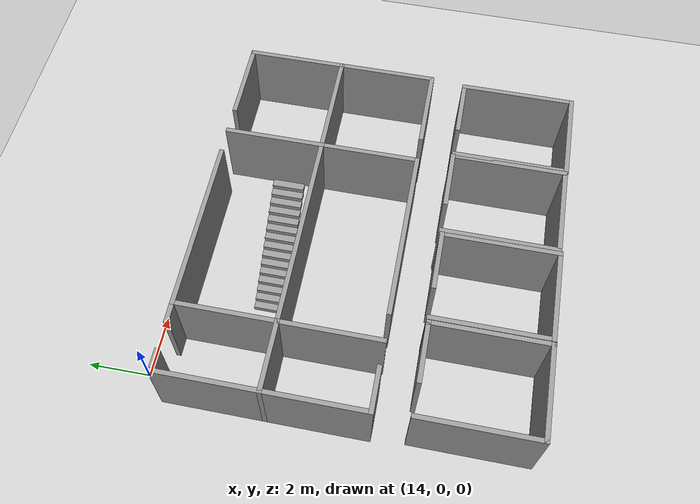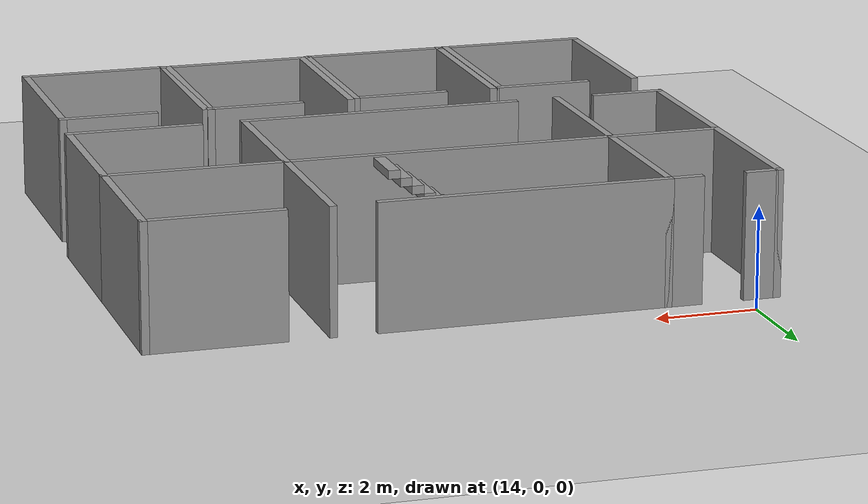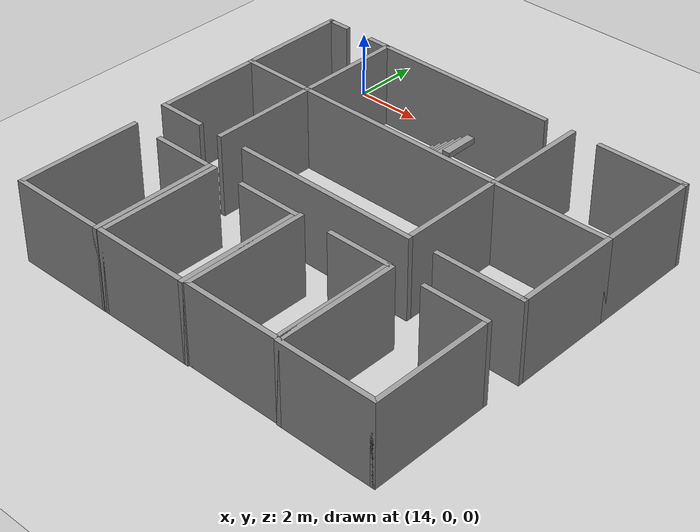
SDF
<sdf version="1.6">
 <world name="default">
  <model name="ground_plane">
   <static>1</static>
   <link name="link">
    <collision name="collision">
     <geometry><plane><normal>0 0 1</normal><size>100 100</size></plane></geometry>
     <surface><friction><ode><mu>100</mu><mu2>50</mu2></ode></friction></surface>
    </collision>
    <visual name="visual">
     <cast_shadows>0</cast_shadows>
     <geometry><plane><normal>0 0 1</normal><size>100 100</size></plane></geometry>
     <material>
      <script><uri>file://media/materials/scripts/gazebo.material</uri><name>Gazebo/Grey</name></script>
     </material>
    </visual>
   </link>
  </model>
  <model name="438">
   <pose>19.4503 -3.87197 0 0 -0 0</pose>
   <link name="Wall_105">
    <collision name="Wall_105_Collision">
     <geometry><box><size>6.668 0.15 2.5</size></box></geometry>
     <pose>0 0 1.25 0 -0 0</pose>
    </collision>
    <visual name="Wall_105_Visual">
     <pose>0 0 1.25 0 -0 0</pose>
     <geometry><box><size>6.668 0.15 2.5</size></box></geometry>
     <material>
      <script><uri>file://media/materials/scripts/gazebo.material</uri><name>Gazebo/Grey</name></script>
      <ambient>1 1 1 1</ambient>
     </material>
     <meta><layer>0</layer></meta>
    </visual>
    <pose>-0.6665 0 0 0 -0 0</pose>
   </link>
   <link name="Wall_106">
    <collision name="Wall_106_Collision">
     <geometry><box><size>3.338 0.15 2.5</size></box></geometry>
     <pose>0 0 1.25 0 -0 0</pose>
    </collision>
    <visual name="Wall_106_Visual">
     <pose>0 0 1.25 0 -0 0</pose>
     <geometry><box><size>3.338 0.15 2.5</size></box></geometry>
     <material>
      <script><uri>file://media/materials/scripts/gazebo.material</uri><name>Gazebo/Grey</name></script>
      <ambient>1 1 1 1</ambient>
     </material>
     <meta><layer>0</layer></meta>
    </visual>
    <pose>2.5925 -1.594 0 0 -0 -1.5708</pose>
   </link>
   <link name="Wall_108">
    <collision name="Wall_108_Collision">
     <geometry><box><size>3.338 0.15 2.5</size></box></geometry>
     <pose>0 0 1.25 0 -0 0</pose>
    </collision>
    <visual name="Wall_108_Visual">
     <pose>0 0 1.25 0 -0 0</pose>
     <geometry><box><size>3.338 0.15 2.5</size></box></geometry>
     <material>
      <script><uri>file://media/materials/scripts/gazebo.material</uri><name>Gazebo/Grey</name></script>
      <ambient>1 1 1 1</ambient>
     </material>
     <meta><layer>0</layer></meta>
    </visual>
    <pose>-3.9255 -1.594 0 0 -0 1.5708</pose>
   </link>
   <link name="Wall_110">
    <collision name="Wall_110_Collision">
     <geometry><box><size>3.667 0.15 2.5</size></box></geometry>
     <pose>0 0 1.25 0 -0 0</pose>
    </collision>
    <visual name="Wall_110_Visual">
     <pose>0 0 1.25 0 -0 0</pose>
     <geometry><box><size>3.667 0.15 2.5</size></box></geometry>
     <material>
      <script><uri>file://media/materials/scripts/gazebo.material</uri><name>Gazebo/Grey</name></script>
      <ambient>1 1 1 1</ambient>
     </material>
     <meta><layer>0</layer></meta>
    </visual>
    <pose>4.351 0 0 0 -0 0</pose>
   </link>
   <link name="Wall_111">
    <collision name="Wall_111_Collision">
     <geometry><box><size>3.338 0.15 2.5</size></box></geometry>
     <pose>0 0 1.25 0 -0 0</pose>
    </collision>
    <visual name="Wall_111_Visual">
     <pose>0 0 1.25 0 -0 0</pose>
     <geometry><box><size>3.338 0.15 2.5</size></box></geometry>
     <material>
      <script><uri>file://media/materials/scripts/gazebo.material</uri><name>Gazebo/Grey</name></script>
      <ambient>1 1 1 1</ambient>
     </material>
     <meta><layer>0</layer></meta>
    </visual>
    <pose>6.1095 1.594 0 0 -0 1.5708</pose>
   </link>
   <link name="Wall_113">
    <collision name="Wall_113_Collision">
     <geometry><box><size>3.338 0.15 2.5</size></box></geometry>
     <pose>0 0 1.25 0 -0 0</pose>
    </collision>
    <visual name="Wall_113_Visual">
     <pose>0 0 1.25 0 -0 0</pose>
     <geometry><box><size>3.338 0.15 2.5</size></box></geometry>
     <material>
      <script><uri>file://media/materials/scripts/gazebo.material</uri><name>Gazebo/Grey</name></script>
      <ambient>1 1 1 1</ambient>
     </material>
     <meta><layer>0</layer></meta>
    </visual>
    <pose>2.5925 1.594 0 0 -0 -1.5708</pose>
   </link>
   <link name="Wall_115">
    <collision name="Wall_115_Collision">
     <geometry><box><size>3.338 0.15 2.5</size></box></geometry>
     <pose>0 0 1.25 0 -0 0</pose>
    </collision>
    <visual name="Wall_115_Visual">
     <pose>0 0 1.25 0 -0 0</pose>
     <geometry><box><size>3.338 0.15 2.5</size></box></geometry>
     <material>
      <script><uri>file://media/materials/scripts/gazebo.material</uri><name>Gazebo/Grey</name></script>
      <ambient>1 1 1 1</ambient>
     </material>
     <meta><layer>0</layer></meta>
    </visual>
    <pose>6.1095 -1.594 0 0 -0 -1.5708</pose>
   </link>
   <link name="Wall_118">
    <collision name="Wall_118_Collision">
     <geometry><box><size>2.75 0.15 2.5</size></box></geometry>
     <pose>0 0 1.25 0 -0 0</pose>
    </collision>
    <visual name="Wall_118_Visual">
     <pose>0 0 1.25 0 -0 0</pose>
     <geometry><box><size>2.75 0.15 2.5</size></box></geometry>
     <material>
      <script><uri>file://media/materials/scripts/gazebo.material</uri><name>Gazebo/Grey</name></script>
      <ambient>1 1 1 1</ambient>
     </material>
     <meta><layer>0</layer></meta>
    </visual>
    <pose>4.8095 3.188 0 0 -0 3.14159</pose>
   </link>
   <link name="Wall_120">
    <collision name="Wall_120_Collision">
     <geometry><box><size>2.75 0.15 2.5</size></box></geometry>
     <pose>0 0 1.25 0 -0 0</pose>
    </collision>
    <visual name="Wall_120_Visual">
     <pose>0 0 1.25 0 -0 0</pose>
     <geometry><box><size>2.75 0.15 2.5</size></box></geometry>
     <material>
      <script><uri>file://media/materials/scripts/gazebo.material</uri><name>Gazebo/Grey</name></script>
      <ambient>1 1 1 1</ambient>
     </material>
     <meta><layer>0</layer></meta>
    </visual>
    <pose>4.8095 -3.188 0 0 -0 3.14159</pose>
   </link>
   <link name="Wall_122">
    <collision name="Wall_122_Collision">
     <geometry><box><size>5.75 0.15 2.5</size></box></geometry>
     <pose>0 0 1.25 0 -0 0</pose>
    </collision>
    <visual name="Wall_122_Visual">
     <pose>0 0 1.25 0 -0 0</pose>
     <geometry><box><size>5.75 0.15 2.5</size></box></geometry>
     <material>
      <script><uri>file://media/materials/scripts/gazebo.material</uri><name>Gazebo/Grey</name></script>
      <ambient>1 1 1 1</ambient>
     </material>
     <meta><layer>0</layer></meta>
    </visual>
    <pose>-0.2075 -3.188 0 0 -0 3.14159</pose>
   </link>
   <link name="Wall_124">
    <collision name="Wall_124_Collision">
     <geometry><box><size>2.334 0.15 2.5</size></box></geometry>
     <pose>0 0 1.25 0 -0 0</pose>
    </collision>
    <visual name="Wall_124_Visual">
     <pose>0 0 1.25 0 -0 0</pose>
     <geometry><box><size>2.334 0.15 2.5</size></box></geometry>
     <material>
      <script><uri>file://media/materials/scripts/gazebo.material</uri><name>Gazebo/Grey</name></script>
      <ambient>1 1 1 1</ambient>
     </material>
     <meta><layer>0</layer></meta>
    </visual>
    <pose>-5.0175 0 0 0 -0 3.14159</pose>
   </link>
   <link name="Wall_125">
    <collision name="Wall_125_Collision">
     <geometry><box><size>3.338 0.15 2.5</size></box></geometry>
     <pose>0 0 1.25 0 -0 0</pose>
    </collision>
    <visual name="Wall_125_Visual">
     <pose>0 0 1.25 0 -0 0</pose>
     <geometry><box><size>3.338 0.15 2.5</size></box></geometry>
     <material>
      <script><uri>file://media/materials/scripts/gazebo.material</uri><name>Gazebo/Grey</name></script>
      <ambient>1 1 1 1</ambient>
     </material>
     <meta><layer>0</layer></meta>
    </visual>
    <pose>-6.1095 1.594 0 0 -0 1.5708</pose>
   </link>
   <link name="Wall_127">
    <collision name="Wall_127_Collision">
     <geometry><box><size>3.338 0.15 2.5</size></box></geometry>
     <pose>0 0 1.25 0 -0 0</pose>
    </collision>
    <visual name="Wall_127_Visual">
     <pose>0 0 1.25 0 -0 0</pose>
     <geometry><box><size>3.338 0.15 2.5</size></box></geometry>
     <material>
      <script><uri>file://media/materials/scripts/gazebo.material</uri><name>Gazebo/Grey</name></script>
      <ambient>1 1 1 1</ambient>
     </material>
     <meta><layer>0</layer></meta>
    </visual>
    <pose>-3.9255 1.594 0 0 -0 -1.5708</pose>
   </link>
   <link name="Wall_129">
    <collision name="Wall_129_Collision">
     <geometry><box><size>3.338 0.15 2.5</size></box></geometry>
     <pose>0 0 1.25 0 -0 0</pose>
    </collision>
    <visual name="Wall_129_Visual">
     <pose>0 0 1.25 0 -0 0</pose>
     <geometry><box><size>3.338 0.15 2.5</size></box></geometry>
     <material>
      <script><uri>file://media/materials/scripts/gazebo.material</uri><name>Gazebo/Grey</name></script>
      <ambient>1 1 1 1</ambient>
     </material>
     <meta><layer>0</layer></meta>
    </visual>
    <pose>-6.1095 -1.594 0 0 -0 -1.5708</pose>
   </link>
   <link name="Wall_132">
    <collision name="Wall_132_Collision">
     <geometry><box><size>1.5 0.15 2.5</size></box></geometry>
     <pose>0 0 1.25 0 -0 0</pose>
    </collision>
    <visual name="Wall_132_Visual">
     <pose>0 0 1.25 0 -0 0</pose>
     <geometry><box><size>1.5 0.15 2.5</size></box></geometry>
     <material>
      <script><uri>file://media/materials/scripts/gazebo.material</uri><name>Gazebo/Grey</name></script>
      <ambient>1 1 1 1</ambient>
     </material>
     <meta><layer>0</layer></meta>
    </visual>
    <pose>-5.4345 -3.188 0 0 -0 0</pose>
   </link>
   <link name="Wall_134">
    <collision name="Wall_134_Collision">
     <geometry><box><size>0.75 0.15 2.5</size></box></geometry>
     <pose>0 0 1.25 0 -0 0</pose>
    </collision>
    <visual name="Wall_134_Visual">
     <pose>0 0 1.25 0 -0 0</pose>
     <geometry><box><size>0.75 0.15 2.5</size></box></geometry>
     <material>
      <script><uri>file://media/materials/scripts/gazebo.material</uri><name>Gazebo/Grey</name></script>
      <ambient>1 1 1 1</ambient>
     </material>
     <meta><layer>0</layer></meta>
    </visual>
    <pose>-5.8095 3.188 0 0 -0 0</pose>
   </link>
   <link name="Wall_136">
    <collision name="Wall_136_Collision">
     <geometry><box><size>0.75 0.15 2.5</size></box></geometry>
     <pose>0 0 1.25 0 -0 0</pose>
    </collision>
    <visual name="Wall_136_Visual">
     <pose>0 0 1.25 0 -0 0</pose>
     <geometry><box><size>0.75 0.15 2.5</size></box></geometry>
     <material>
      <script><uri>file://media/materials/scripts/gazebo.material</uri><name>Gazebo/Grey</name></script>
      <ambient>1 1 1 1</ambient>
     </material>
     <meta><layer>0</layer></meta>
    </visual>
    <pose>-4.2255 3.188 0 0 -0 0</pose>
   </link>
   <link name="Wall_138">
    <collision name="Wall_138_Collision">
     <geometry><box><size>5.75 0.15 2.5</size></box></geometry>
     <pose>0 0 1.25 0 -0 0</pose>
    </collision>
    <visual name="Wall_138_Visual">
     <pose>0 0 1.25 0 -0 0</pose>
     <geometry><box><size>5.75 0.15 2.5</size></box></geometry>
     <material>
      <script><uri>file://media/materials/scripts/gazebo.material</uri><name>Gazebo/Grey</name></script>
      <ambient>1 1 1 1</ambient>
     </material>
     <meta><layer>0</layer></meta>
    </visual>
    <pose>-1.1255 3.188 0 0 -0 0</pose>
   </link>
   <static>1</static>
  </model>
  <model name="329">
   <pose>23.9902 -10.0463 0 0 -0 0</pose>
   <link name="Wall_0">
    <collision name="Wall_0_Collision">
     <geometry><box><size>3.81 0.15 2.5</size></box></geometry>
     <pose>0 0 1.25 0 -0 0</pose>
    </collision>
    <visual name="Wall_0_Visual">
     <pose>0 0 1.25 0 -0 0</pose>
     <geometry><box><size>3.81 0.15 2.5</size></box></geometry>
     <material>
      <script><uri>file://media/materials/scripts/gazebo.material</uri><name>Gazebo/Grey</name></script>
      <ambient>1 1 1 1</ambient>
     </material>
     <meta><layer>0</layer></meta>
    </visual>
    <pose>-1.449 0 0 0 -0 -1.5708</pose>
   </link>
   <link name="Wall_1">
    <collision name="Wall_1_Collision">
     <geometry><box><size>3.048 0.15 2.5</size></box></geometry>
     <pose>0 0 1.25 0 -0 0</pose>
    </collision>
    <visual name="Wall_1_Visual">
     <pose>0 0 1.25 0 -0 0</pose>
     <geometry><box><size>3.048 0.15 2.5</size></box></geometry>
     <material>
      <script><uri>file://media/materials/scripts/gazebo.material</uri><name>Gazebo/Grey</name></script>
      <ambient>1 1 1 1</ambient>
     </material>
     <meta><layer>0</layer></meta>
    </visual>
    <pose>-0 -1.83 0 0 -0 0</pose>
   </link>
   <link name="Wall_2">
    <collision name="Wall_2_Collision">
     <geometry><box><size>3.81 0.15 2.5</size></box></geometry>
     <pose>0 0 1.25 0 -0 0</pose>
    </collision>
    <visual name="Wall_2_Visual">
     <pose>0 0 1.25 0 -0 0</pose>
     <geometry><box><size>3.81 0.15 2.5</size></box></geometry>
     <material>
      <script><uri>file://media/materials/scripts/gazebo.material</uri><name>Gazebo/Grey</name></script>
      <ambient>1 1 1 1</ambient>
     </material>
     <meta><layer>0</layer></meta>
    </visual>
    <pose>1.449 0 0 0 -0 1.5708</pose>
   </link>
   <link name="Wall_5">
    <collision name="Wall_5_Collision">
     <geometry><box><size>2 0.15 2.5</size></box></geometry>
     <pose>0 0 1.25 0 -0 0</pose>
    </collision>
    <visual name="Wall_5_Visual">
     <pose>0 0 1.25 0 -0 0</pose>
     <geometry><box><size>2 0.15 2.5</size></box></geometry>
     <material>
      <script><uri>file://media/materials/scripts/gazebo.material</uri><name>Gazebo/Grey</name></script>
      <ambient>1 1 1 1</ambient>
     </material>
     <meta><layer>0</layer></meta>
    </visual>
    <pose>0.524 1.83 0 0 -0 3.14159</pose>
   </link>
   <static>1</static>
  </model>
  <model name="329_0">
   <pose>20.9915 -10.021 0 0 -0 0</pose>
   <link name="Wall_0">
    <collision name="Wall_0_Collision">
     <geometry><box><size>3.81 0.15 2.5</size></box></geometry>
     <pose>0 0 1.25 0 -0 0</pose>
    </collision>
    <visual name="Wall_0_Visual">
     <pose>0 0 1.25 0 -0 0</pose>
     <geometry><box><size>3.81 0.15 2.5</size></box></geometry>
     <material>
      <script><uri>file://media/materials/scripts/gazebo.material</uri><name>Gazebo/Grey</name></script>
      <ambient>1 1 1 1</ambient>
     </material>
     <meta><layer>0</layer></meta>
    </visual>
    <pose>-1.449 0 0 0 -0 -1.5708</pose>
   </link>
   <link name="Wall_1">
    <collision name="Wall_1_Collision">
     <geometry><box><size>3.048 0.15 2.5</size></box></geometry>
     <pose>0 0 1.25 0 -0 0</pose>
    </collision>
    <visual name="Wall_1_Visual">
     <pose>0 0 1.25 0 -0 0</pose>
     <geometry><box><size>3.048 0.15 2.5</size></box></geometry>
     <material>
      <script><uri>file://media/materials/scripts/gazebo.material</uri><name>Gazebo/Grey</name></script>
      <ambient>1 1 1 1</ambient>
     </material>
     <meta><layer>0</layer></meta>
    </visual>
    <pose>-0 -1.83 0 0 -0 0</pose>
   </link>
   <link name="Wall_2">
    <collision name="Wall_2_Collision">
     <geometry><box><size>3.81 0.15 2.5</size></box></geometry>
     <pose>0 0 1.25 0 -0 0</pose>
    </collision>
    <visual name="Wall_2_Visual">
     <pose>0 0 1.25 0 -0 0</pose>
     <geometry><box><size>3.81 0.15 2.5</size></box></geometry>
     <material>
      <script><uri>file://media/materials/scripts/gazebo.material</uri><name>Gazebo/Grey</name></script>
      <ambient>1 1 1 1</ambient>
     </material>
     <meta><layer>0</layer></meta>
    </visual>
    <pose>1.449 0 0 0 -0 1.5708</pose>
   </link>
   <link name="Wall_5">
    <collision name="Wall_5_Collision">
     <geometry><box><size>2 0.15 2.5</size></box></geometry>
     <pose>0 0 1.25 0 -0 0</pose>
    </collision>
    <visual name="Wall_5_Visual">
     <pose>0 0 1.25 0 -0 0</pose>
     <geometry><box><size>2 0.15 2.5</size></box></geometry>
     <material>
      <script><uri>file://media/materials/scripts/gazebo.material</uri><name>Gazebo/Grey</name></script>
      <ambient>1 1 1 1</ambient>
     </material>
     <meta><layer>0</layer></meta>
    </visual>
    <pose>0.524 1.83 0 0 -0 3.14159</pose>
   </link>
   <static>1</static>
  </model>
  <model name="329_1">
   <pose>17.961 -10.0607 0 0 -0 0</pose>
   <link name="Wall_0">
    <collision name="Wall_0_Collision">
     <geometry><box><size>3.81 0.15 2.5</size></box></geometry>
     <pose>0 0 1.25 0 -0 0</pose>
    </collision>
    <visual name="Wall_0_Visual">
     <pose>0 0 1.25 0 -0 0</pose>
     <geometry><box><size>3.81 0.15 2.5</size></box></geometry>
     <material>
      <script><uri>file://media/materials/scripts/gazebo.material</uri><name>Gazebo/Grey</name></script>
      <ambient>1 1 1 1</ambient>
     </material>
     <meta><layer>0</layer></meta>
    </visual>
    <pose>-1.449 0 0 0 -0 -1.5708</pose>
   </link>
   <link name="Wall_1">
    <collision name="Wall_1_Collision">
     <geometry><box><size>3.048 0.15 2.5</size></box></geometry>
     <pose>0 0 1.25 0 -0 0</pose>
    </collision>
    <visual name="Wall_1_Visual">
     <pose>0 0 1.25 0 -0 0</pose>
     <geometry><box><size>3.048 0.15 2.5</size></box></geometry>
     <material>
      <script><uri>file://media/materials/scripts/gazebo.material</uri><name>Gazebo/Grey</name></script>
      <ambient>1 1 1 1</ambient>
     </material>
     <meta><layer>0</layer></meta>
    </visual>
    <pose>-0 -1.83 0 0 -0 0</pose>
   </link>
   <link name="Wall_2">
    <collision name="Wall_2_Collision">
     <geometry><box><size>3.81 0.15 2.5</size></box></geometry>
     <pose>0 0 1.25 0 -0 0</pose>
    </collision>
    <visual name="Wall_2_Visual">
     <pose>0 0 1.25 0 -0 0</pose>
     <geometry><box><size>3.81 0.15 2.5</size></box></geometry>
     <material>
      <script><uri>file://media/materials/scripts/gazebo.material</uri><name>Gazebo/Grey</name></script>
      <ambient>1 1 1 1</ambient>
     </material>
     <meta><layer>0</layer></meta>
    </visual>
    <pose>1.449 0 0 0 -0 1.5708</pose>
   </link>
   <link name="Wall_5">
    <collision name="Wall_5_Collision">
     <geometry><box><size>2 0.15 2.5</size></box></geometry>
     <pose>0 0 1.25 0 -0 0</pose>
    </collision>
    <visual name="Wall_5_Visual">
     <pose>0 0 1.25 0 -0 0</pose>
     <geometry><box><size>2 0.15 2.5</size></box></geometry>
     <material>
      <script><uri>file://media/materials/scripts/gazebo.material</uri><name>Gazebo/Grey</name></script>
      <ambient>1 1 1 1</ambient>
     </material>
     <meta><layer>0</layer></meta>
    </visual>
    <pose>0.524 1.83 0 0 -0 3.14159</pose>
   </link>
   <static>1</static>
  </model>
  <model name="329_2">
   <pose>14.9043 -10.067 0 0 -0 0</pose>
   <link name="Wall_0">
    <collision name="Wall_0_Collision">
     <geometry><box><size>3.81 0.15 2.5</size></box></geometry>
     <pose>0 0 1.25 0 -0 0</pose>
    </collision>
    <visual name="Wall_0_Visual">
     <pose>0 0 1.25 0 -0 0</pose>
     <geometry><box><size>3.81 0.15 2.5</size></box></geometry>
     <material>
      <script><uri>file://media/materials/scripts/gazebo.material</uri><name>Gazebo/Grey</name></script>
      <ambient>1 1 1 1</ambient>
     </material>
     <meta><layer>0</layer></meta>
    </visual>
    <pose>-1.449 0 0 0 -0 -1.5708</pose>
   </link>
   <link name="Wall_1">
    <collision name="Wall_1_Collision">
     <geometry><box><size>3.048 0.15 2.5</size></box></geometry>
     <pose>0 0 1.25 0 -0 0</pose>
    </collision>
    <visual name="Wall_1_Visual">
     <pose>0 0 1.25 0 -0 0</pose>
     <geometry><box><size>3.048 0.15 2.5</size></box></geometry>
     <material>
      <script><uri>file://media/materials/scripts/gazebo.material</uri><name>Gazebo/Grey</name></script>
      <ambient>1 1 1 1</ambient>
     </material>
     <meta><layer>0</layer></meta>
    </visual>
    <pose>-0 -1.83 0 0 -0 0</pose>
   </link>
   <link name="Wall_2">
    <collision name="Wall_2_Collision">
     <geometry><box><size>3.81 0.15 2.5</size></box></geometry>
     <pose>0 0 1.25 0 -0 0</pose>
    </collision>
    <visual name="Wall_2_Visual">
     <pose>0 0 1.25 0 -0 0</pose>
     <geometry><box><size>3.81 0.15 2.5</size></box></geometry>
     <material>
      <script><uri>file://media/materials/scripts/gazebo.material</uri><name>Gazebo/Grey</name></script>
      <ambient>1 1 1 1</ambient>
     </material>
     <meta><layer>0</layer></meta>
    </visual>
    <pose>1.449 0 0 0 -0 1.5708</pose>
   </link>
   <link name="Wall_5">
    <collision name="Wall_5_Collision">
     <geometry><box><size>2 0.15 2.5</size></box></geometry>
     <pose>0 0 1.25 0 -0 0</pose>
    </collision>
    <visual name="Wall_5_Visual">
     <pose>0 0 1.25 0 -0 0</pose>
     <geometry><box><size>2 0.15 2.5</size></box></geometry>
     <material>
      <script><uri>file://media/materials/scripts/gazebo.material</uri><name>Gazebo/Grey</name></script>
      <ambient>1 1 1 1</ambient>
     </material>
     <meta><layer>0</layer></meta>
    </visual>
    <pose>0.524 1.83 0 0 -0 3.14159</pose>
   </link>
   <static>1</static>
  </model>
  <model name="Staircase_1">
   <link name="Stairs_0">
    <visual name="Stairs_0_Visual_2">
     <pose>-1.16667 -0 0.416667 0 -0 1.5708</pose>
     <geometry><box><size>1 0.233333 0.166667</size></box></geometry>
     <material>
      <script><uri>file://media/materials/scripts/gazebo.material</uri><name>Gazebo/Grey</name></script>
      <ambient>1 1 1 1</ambient>
      <shader type="pixel"/>
     </material>
     <meta><layer>0</layer></meta>
    </visual>
    <visual name="Stairs_0_Visual_3">
     <pose>-0.933333 -0 0.583333 0 -0 1.5708</pose>
     <geometry><box><size>1 0.233333 0.166667</size></box></geometry>
     <material>
      <script><uri>file://media/materials/scripts/gazebo.material</uri><name>Gazebo/Grey</name></script>
      <ambient>1 1 1 1</ambient>
      <shader type="pixel"/>
     </material>
     <meta><layer>0</layer></meta>
    </visual>
    <visual name="Stairs_0_Visual_4">
     <pose>-0.7 0 0.75 0 -0 1.5708</pose>
     <geometry><box><size>1 0.233333 0.166667</size></box></geometry>
     <material>
      <script><uri>file://media/materials/scripts/gazebo.material</uri><name>Gazebo/Grey</name></script>
      <ambient>1 1 1 1</ambient>
      <shader type="pixel"/>
     </material>
     <meta><layer>0</layer></meta>
    </visual>
    <visual name="Stairs_0_Visual_5">
     <pose>-0.466667 0 0.916667 0 -0 1.5708</pose>
     <geometry><box><size>1 0.233333 0.166667</size></box></geometry>
     <material>
      <script><uri>file://media/materials/scripts/gazebo.material</uri><name>Gazebo/Grey</name></script>
      <ambient>1 1 1 1</ambient>
      <shader type="pixel"/>
     </material>
     <meta><layer>0</layer></meta>
    </visual>
    <visual name="Stairs_0_Visual_6">
     <pose>-0.233333 0 1.08333 0 -0 1.5708</pose>
     <geometry><box><size>1 0.233333 0.166667</size></box></geometry>
     <material>
      <script><uri>file://media/materials/scripts/gazebo.material</uri><name>Gazebo/Grey</name></script>
      <ambient>1 1 1 1</ambient>
      <shader type="pixel"/>
     </material>
     <meta><layer>0</layer></meta>
    </visual>
    <visual name="Stairs_0_Visual_7">
     <pose>0 0 1.25 0 -0 1.5708</pose>
     <geometry><box><size>1 0.233333 0.166667</size></box></geometry>
     <material>
      <script><uri>file://media/materials/scripts/gazebo.material</uri><name>Gazebo/Grey</name></script>
      <ambient>1 1 1 1</ambient>
      <shader type="pixel"/>
     </material>
     <meta><layer>0</layer></meta>
    </visual>
    <visual name="Stairs_0_Visual_8">
     <pose>0.233333 0 1.41667 0 -0 1.5708</pose>
     <geometry><box><size>1 0.233333 0.166667</size></box></geometry>
     <material>
      <script><uri>file://media/materials/scripts/gazebo.material</uri><name>Gazebo/Grey</name></script>
      <ambient>1 1 1 1</ambient>
      <shader type="pixel"/>
     </material>
     <meta><layer>0</layer></meta>
    </visual>
    <visual name="Stairs_0_Visual_9">
     <pose>0.466667 0 1.58333 0 -0 1.5708</pose>
     <geometry><box><size>1 0.233333 0.166667</size></box></geometry>
     <material>
      <script><uri>file://media/materials/scripts/gazebo.material</uri><name>Gazebo/Grey</name></script>
      <ambient>1 1 1 1</ambient>
      <shader type="pixel"/>
     </material>
     <meta><layer>0</layer></meta>
    </visual>
    <visual name="Stairs_0_Visual_10">
     <pose>0.7 0 1.75 0 -0 1.5708</pose>
     <geometry><box><size>1 0.233333 0.166667</size></box></geometry>
     <material>
      <script><uri>file://media/materials/scripts/gazebo.material</uri><name>Gazebo/Grey</name></script>
      <ambient>1 1 1 1</ambient>
      <shader type="pixel"/>
     </material>
     <meta><layer>0</layer></meta>
    </visual>
    <visual name="Stairs_0_Visual_11">
     <pose>0.933334 0 1.91667 0 -0 1.5708</pose>
     <geometry><box><size>1 0.233333 0.166667</size></box></geometry>
     <material>
      <script><uri>file://media/materials/scripts/gazebo.material</uri><name>Gazebo/Grey</name></script>
      <ambient>1 1 1 1</ambient>
      <shader type="pixel"/>
     </material>
     <meta><layer>0</layer></meta>
    </visual>
    <visual name="Stairs_0_Visual_12">
     <pose>1.16667 0 2.08333 0 -0 1.5708</pose>
     <geometry><box><size>1 0.233333 0.166667</size></box></geometry>
     <material>
      <script><uri>file://media/materials/scripts/gazebo.material</uri><name>Gazebo/Grey</name></script>
      <ambient>1 1 1 1</ambient>
      <shader type="pixel"/>
     </material>
     <meta><layer>0</layer></meta>
    </visual>
    <visual name="Stairs_0_Visual_13">
     <pose>1.4 0 2.25 0 -0 1.5708</pose>
     <geometry><box><size>1 0.233333 0.166667</size></box></geometry>
     <material>
      <script><uri>file://media/materials/scripts/gazebo.material</uri><name>Gazebo/Grey</name></script>
      <ambient>1 1 1 1</ambient>
      <shader type="pixel"/>
     </material>
     <meta><layer>0</layer></meta>
    </visual>
    <visual name="Stairs_0_Visual_14">
     <pose>1.63333 0 2.41667 0 -0 1.5708</pose>
     <geometry><box><size>1 0.233333 0.166667</size></box></geometry>
     <material>
      <script><uri>file://media/materials/scripts/gazebo.material</uri><name>Gazebo/Grey</name></script>
      <ambient>1 1 1 1</ambient>
      <shader type="pixel"/>
     </material>
     <meta><layer>0</layer></meta>
    </visual>
    <visual name="Stairs_0_Visual_0">
     <pose>-1.63333 -0 0.083333 0 -0 1.5708</pose>
     <geometry><box><size>1 0.233333 0.166667</size></box></geometry>
     <material>
      <script><uri>file://media/materials/scripts/gazebo.material</uri><name>Gazebo/Grey</name></script>
      <ambient>1 1 1 1</ambient>
      <shader type="pixel"/>
     </material>
     <meta><layer>0</layer></meta>
    </visual>
    <visual name="Stairs_0_Visual_1">
     <pose>-1.4 -0 0.25 0 -0 1.5708</pose>
     <geometry><box><size>1 0.233333 0.166667</size></box></geometry>
     <material>
      <script><uri>file://media/materials/scripts/gazebo.material</uri><name>Gazebo/Grey</name></script>
      <ambient>1 1 1 1</ambient>
      <shader type="pixel"/>
     </material>
     <meta><layer>0</layer></meta>
    </visual>
    <collision name="Stairs_0_Collision_0">
     <pose>-1.63333 0 0.083333 0 -0 1.5708</pose>
     <geometry><box><size>1 0.233333 0.166667</size></box></geometry>
     <surface>
      <friction>
       <ode><mu>1</mu><mu2>1</mu2><fdir1>0 0 0</fdir1><slip1>0</slip1><slip2>0</slip2></ode>
       <torsional>
        <coefficient>1</coefficient>
        <patch_radius>0</patch_radius>
        <surface_radius>0</surface_radius>
        <use_patch_radius>1</use_patch_radius>
        <ode><slip>0</slip></ode>
       </torsional>
      </friction>
      <bounce><restitution_coefficient>0</restitution_coefficient><threshold>1e+06</threshold></bounce>
      <contact>
       <collide_without_contact>0</collide_without_contact>
       <collide_without_contact_bitmask>1</collide_without_contact_bitmask>
       <collide_bitmask>1</collide_bitmask>
       <ode>
        <soft_cfm>0</soft_cfm>
        <soft_erp>0.2</soft_erp>
        <kp>1e+13</kp>
        <kd>1</kd>
        <max_vel>0.01</max_vel>
        <min_depth>0</min_depth>
       </ode>
       <bullet>
        <split_impulse>1</split_impulse>
        <split_impulse_penetration_threshold>-0.01</split_impulse_penetration_threshold>
        <soft_cfm>0</soft_cfm>
        <soft_erp>0.2</soft_erp>
        <kp>1e+13</kp>
        <kd>1</kd>
       </bullet>
      </contact>
     </surface>
    </collision>
    <collision name="Stairs_0_Collision_1">
     <pose>-1.4 0 0.25 0 -0 1.5708</pose>
     <geometry><box><size>1 0.233333 0.166667</size></box></geometry>
     <surface>
      <friction>
       <ode><mu>1</mu><mu2>1</mu2><fdir1>0 0 0</fdir1><slip1>0</slip1><slip2>0</slip2></ode>
       <torsional>
        <coefficient>1</coefficient>
        <patch_radius>0</patch_radius>
        <surface_radius>0</surface_radius>
        <use_patch_radius>1</use_patch_radius>
        <ode><slip>0</slip></ode>
       </torsional>
      </friction>
      <bounce><restitution_coefficient>0</restitution_coefficient><threshold>1e+06</threshold></bounce>
      <contact>
       <collide_without_contact>0</collide_without_contact>
       <collide_without_contact_bitmask>1</collide_without_contact_bitmask>
       <collide_bitmask>1</collide_bitmask>
       <ode>
        <soft_cfm>0</soft_cfm>
        <soft_erp>0.2</soft_erp>
        <kp>1e+13</kp>
        <kd>1</kd>
        <max_vel>0.01</max_vel>
        <min_depth>0</min_depth>
       </ode>
       <bullet>
        <split_impulse>1</split_impulse>
        <split_impulse_penetration_threshold>-0.01</split_impulse_penetration_threshold>
        <soft_cfm>0</soft_cfm>
        <soft_erp>0.2</soft_erp>
        <kp>1e+13</kp>
        <kd>1</kd>
       </bullet>
      </contact>
     </surface>
    </collision>
    <collision name="Stairs_0_Collision_2">
     <pose>-1.16667 0 0.416667 0 -0 1.5708</pose>
     <geometry><box><size>1 0.233333 0.166667</size></box></geometry>
     <surface>
      <friction>
       <ode><mu>1</mu><mu2>1</mu2><fdir1>0 0 0</fdir1><slip1>0</slip1><slip2>0</slip2></ode>
       <torsional>
        <coefficient>1</coefficient>
        <patch_radius>0</patch_radius>
        <surface_radius>0</surface_radius>
        <use_patch_radius>1</use_patch_radius>
        <ode><slip>0</slip></ode>
       </torsional>
      </friction>
      <bounce><restitution_coefficient>0</restitution_coefficient><threshold>1e+06</threshold></bounce>
      <contact>
       <collide_without_contact>0</collide_without_contact>
       <collide_without_contact_bitmask>1</collide_without_contact_bitmask>
       <collide_bitmask>1</collide_bitmask>
       <ode>
        <soft_cfm>0</soft_cfm>
        <soft_erp>0.2</soft_erp>
        <kp>1e+13</kp>
        <kd>1</kd>
        <max_vel>0.01</max_vel>
        <min_depth>0</min_depth>
       </ode>
       <bullet>
        <split_impulse>1</split_impulse>
        <split_impulse_penetration_threshold>-0.01</split_impulse_penetration_threshold>
        <soft_cfm>0</soft_cfm>
        <soft_erp>0.2</soft_erp>
        <kp>1e+13</kp>
        <kd>1</kd>
       </bullet>
      </contact>
     </surface>
    </collision>
    <collision name="Stairs_0_Collision_3">
     <pose>-0.933333 0 0.583333 0 -0 1.5708</pose>
     <geometry><box><size>1 0.233333 0.166667</size></box></geometry>
     <surface>
      <friction>
       <ode><mu>1</mu><mu2>1</mu2><fdir1>0 0 0</fdir1><slip1>0</slip1><slip2>0</slip2></ode>
       <torsional>
        <coefficient>1</coefficient>
        <patch_radius>0</patch_radius>
        <surface_radius>0</surface_radius>
        <use_patch_radius>1</use_patch_radius>
        <ode><slip>0</slip></ode>
       </torsional>
      </friction>
      <bounce><restitution_coefficient>0</restitution_coefficient><threshold>1e+06</threshold></bounce>
      <contact>
       <collide_without_contact>0</collide_without_contact>
       <collide_without_contact_bitmask>1</collide_without_contact_bitmask>
       <collide_bitmask>1</collide_bitmask>
       <ode>
        <soft_cfm>0</soft_cfm>
        <soft_erp>0.2</soft_erp>
        <kp>1e+13</kp>
        <kd>1</kd>
        <max_vel>0.01</max_vel>
        <min_depth>0</min_depth>
       </ode>
       <bullet>
        <split_impulse>1</split_impulse>
        <split_impulse_penetration_threshold>-0.01</split_impulse_penetration_threshold>
        <soft_cfm>0</soft_cfm>
        <soft_erp>0.2</soft_erp>
        <kp>1e+13</kp>
        <kd>1</kd>
       </bullet>
      </contact>
     </surface>
    </collision>
    <collision name="Stairs_0_Collision_4">
     <pose>-0.7 0 0.75 0 -0 1.5708</pose>
     <geometry><box><size>1 0.233333 0.166667</size></box></geometry>
     <surface>
      <friction>
       <ode><mu>1</mu><mu2>1</mu2><fdir1>0 0 0</fdir1><slip1>0</slip1><slip2>0</slip2></ode>
       <torsional>
        <coefficient>1</coefficient>
        <patch_radius>0</patch_radius>
        <surface_radius>0</surface_radius>
        <use_patch_radius>1</use_patch_radius>
        <ode><slip>0</slip></ode>
       </torsional>
      </friction>
      <bounce><restitution_coefficient>0</restitution_coefficient><threshold>1e+06</threshold></bounce>
      <contact>
       <collide_without_contact>0</collide_without_contact>
       <collide_without_contact_bitmask>1</collide_without_contact_bitmask>
       <collide_bitmask>1</collide_bitmask>
       <ode>
        <soft_cfm>0</soft_cfm>
        <soft_erp>0.2</soft_erp>
        <kp>1e+13</kp>
        <kd>1</kd>
        <max_vel>0.01</max_vel>
        <min_depth>0</min_depth>
       </ode>
       <bullet>
        <split_impulse>1</split_impulse>
        <split_impulse_penetration_threshold>-0.01</split_impulse_penetration_threshold>
        <soft_cfm>0</soft_cfm>
        <soft_erp>0.2</soft_erp>
        <kp>1e+13</kp>
        <kd>1</kd>
       </bullet>
      </contact>
     </surface>
    </collision>
    <collision name="Stairs_0_Collision_5">
     <pose>-0.466667 0 0.916667 0 -0 1.5708</pose>
     <geometry><box><size>1 0.233333 0.166667</size></box></geometry>
     <surface>
      <friction>
       <ode><mu>1</mu><mu2>1</mu2><fdir1>0 0 0</fdir1><slip1>0</slip1><slip2>0</slip2></ode>
       <torsional>
        <coefficient>1</coefficient>
        <patch_radius>0</patch_radius>
        <surface_radius>0</surface_radius>
        <use_patch_radius>1</use_patch_radius>
        <ode><slip>0</slip></ode>
       </torsional>
      </friction>
      <bounce><restitution_coefficient>0</restitution_coefficient><threshold>1e+06</threshold></bounce>
      <contact>
       <collide_without_contact>0</collide_without_contact>
       <collide_without_contact_bitmask>1</collide_without_contact_bitmask>
       <collide_bitmask>1</collide_bitmask>
       <ode>
        <soft_cfm>0</soft_cfm>
        <soft_erp>0.2</soft_erp>
        <kp>1e+13</kp>
        <kd>1</kd>
        <max_vel>0.01</max_vel>
        <min_depth>0</min_depth>
       </ode>
       <bullet>
        <split_impulse>1</split_impulse>
        <split_impulse_penetration_threshold>-0.01</split_impulse_penetration_threshold>
        <soft_cfm>0</soft_cfm>
        <soft_erp>0.2</soft_erp>
        <kp>1e+13</kp>
        <kd>1</kd>
       </bullet>
      </contact>
     </surface>
    </collision>
    <collision name="Stairs_0_Collision_6">
     <pose>-0.233333 0 1.08333 0 -0 1.5708</pose>
     <geometry><box><size>1 0.233333 0.166667</size></box></geometry>
     <surface>
      <friction>
       <ode><mu>1</mu><mu2>1</mu2><fdir1>0 0 0</fdir1><slip1>0</slip1><slip2>0</slip2></ode>
       <torsional>
        <coefficient>1</coefficient>
        <patch_radius>0</patch_radius>
        <surface_radius>0</surface_radius>
        <use_patch_radius>1</use_patch_radius>
        <ode><slip>0</slip></ode>
       </torsional>
      </friction>
      <bounce><restitution_coefficient>0</restitution_coefficient><threshold>1e+06</threshold></bounce>
      <contact>
       <collide_without_contact>0</collide_without_contact>
       <collide_without_contact_bitmask>1</collide_without_contact_bitmask>
       <collide_bitmask>1</collide_bitmask>
       <ode>
        <soft_cfm>0</soft_cfm>
        <soft_erp>0.2</soft_erp>
        <kp>1e+13</kp>
        <kd>1</kd>
        <max_vel>0.01</max_vel>
        <min_depth>0</min_depth>
       </ode>
       <bullet>
        <split_impulse>1</split_impulse>
        <split_impulse_penetration_threshold>-0.01</split_impulse_penetration_threshold>
        <soft_cfm>0</soft_cfm>
        <soft_erp>0.2</soft_erp>
        <kp>1e+13</kp>
        <kd>1</kd>
       </bullet>
      </contact>
     </surface>
    </collision>
    <collision name="Stairs_0_Collision_7">
     <pose>0 0 1.25 0 -0 1.5708</pose>
     <geometry><box><size>1 0.233333 0.166667</size></box></geometry>
     <surface>
      <friction>
       <ode><mu>1</mu><mu2>1</mu2><fdir1>0 0 0</fdir1><slip1>0</slip1><slip2>0</slip2></ode>
       <torsional>
        <coefficient>1</coefficient>
        <patch_radius>0</patch_radius>
        <surface_radius>0</surface_radius>
        <use_patch_radius>1</use_patch_radius>
        <ode><slip>0</slip></ode>
       </torsional>
      </friction>
      <bounce><restitution_coefficient>0</restitution_coefficient><threshold>1e+06</threshold></bounce>
      <contact>
       <collide_without_contact>0</collide_without_contact>
       <collide_without_contact_bitmask>1</collide_without_contact_bitmask>
       <collide_bitmask>1</collide_bitmask>
       <ode>
        <soft_cfm>0</soft_cfm>
        <soft_erp>0.2</soft_erp>
        <kp>1e+13</kp>
        <kd>1</kd>
        <max_vel>0.01</max_vel>
        <min_depth>0</min_depth>
       </ode>
       <bullet>
        <split_impulse>1</split_impulse>
        <split_impulse_penetration_threshold>-0.01</split_impulse_penetration_threshold>
        <soft_cfm>0</soft_cfm>
        <soft_erp>0.2</soft_erp>
        <kp>1e+13</kp>
        <kd>1</kd>
       </bullet>
      </contact>
     </surface>
    </collision>
    <collision name="Stairs_0_Collision_8">
     <pose>0.233333 0 1.41667 0 -0 1.5708</pose>
     <geometry><box><size>1 0.233333 0.166667</size></box></geometry>
     <surface>
      <friction>
       <ode><mu>1</mu><mu2>1</mu2><fdir1>0 0 0</fdir1><slip1>0</slip1><slip2>0</slip2></ode>
       <torsional>
        <coefficient>1</coefficient>
        <patch_radius>0</patch_radius>
        <surface_radius>0</surface_radius>
        <use_patch_radius>1</use_patch_radius>
        <ode><slip>0</slip></ode>
       </torsional>
      </friction>
      <bounce><restitution_coefficient>0</restitution_coefficient><threshold>1e+06</threshold></bounce>
      <contact>
       <collide_without_contact>0</collide_without_contact>
       <collide_without_contact_bitmask>1</collide_without_contact_bitmask>
       <collide_bitmask>1</collide_bitmask>
       <ode>
        <soft_cfm>0</soft_cfm>
        <soft_erp>0.2</soft_erp>
        <kp>1e+13</kp>
        <kd>1</kd>
        <max_vel>0.01</max_vel>
        <min_depth>0</min_depth>
       </ode>
       <bullet>
        <split_impulse>1</split_impulse>
        <split_impulse_penetration_threshold>-0.01</split_impulse_penetration_threshold>
        <soft_cfm>0</soft_cfm>
        <soft_erp>0.2</soft_erp>
        <kp>1e+13</kp>
        <kd>1</kd>
       </bullet>
      </contact>
     </surface>
    </collision>
    <collision name="Stairs_0_Collision_9">
     <pose>0.466667 0 1.58333 0 -0 1.5708</pose>
     <geometry><box><size>1 0.233333 0.166667</size></box></geometry>
     <surface>
      <friction>
       <ode><mu>1</mu><mu2>1</mu2><fdir1>0 0 0</fdir1><slip1>0</slip1><slip2>0</slip2></ode>
       <torsional>
        <coefficient>1</coefficient>
        <patch_radius>0</patch_radius>
        <surface_radius>0</surface_radius>
        <use_patch_radius>1</use_patch_radius>
        <ode><slip>0</slip></ode>
       </torsional>
      </friction>
      <bounce><restitution_coefficient>0</restitution_coefficient><threshold>1e+06</threshold></bounce>
      <contact>
       <collide_without_contact>0</collide_without_contact>
       <collide_without_contact_bitmask>1</collide_without_contact_bitmask>
       <collide_bitmask>1</collide_bitmask>
       <ode>
        <soft_cfm>0</soft_cfm>
        <soft_erp>0.2</soft_erp>
        <kp>1e+13</kp>
        <kd>1</kd>
        <max_vel>0.01</max_vel>
        <min_depth>0</min_depth>
       </ode>
       <bullet>
        <split_impulse>1</split_impulse>
        <split_impulse_penetration_threshold>-0.01</split_impulse_penetration_threshold>
        <soft_cfm>0</soft_cfm>
        <soft_erp>0.2</soft_erp>
        <kp>1e+13</kp>
        <kd>1</kd>
       </bullet>
      </contact>
     </surface>
    </collision>
    <collision name="Stairs_0_Collision_10">
     <pose>0.7 0 1.75 0 -0 1.5708</pose>
     <geometry><box><size>1 0.233333 0.166667</size></box></geometry>
     <surface>
      <friction>
       <ode><mu>1</mu><mu2>1</mu2><fdir1>0 0 0</fdir1><slip1>0</slip1><slip2>0</slip2></ode>
       <torsional>
        <coefficient>1</coefficient>
        <patch_radius>0</patch_radius>
        <surface_radius>0</surface_radius>
        <use_patch_radius>1</use_patch_radius>
        <ode><slip>0</slip></ode>
       </torsional>
      </friction>
      <bounce><restitution_coefficient>0</restitution_coefficient><threshold>1e+06</threshold></bounce>
      <contact>
       <collide_without_contact>0</collide_without_contact>
       <collide_without_contact_bitmask>1</collide_without_contact_bitmask>
       <collide_bitmask>1</collide_bitmask>
       <ode>
        <soft_cfm>0</soft_cfm>
        <soft_erp>0.2</soft_erp>
        <kp>1e+13</kp>
        <kd>1</kd>
        <max_vel>0.01</max_vel>
        <min_depth>0</min_depth>
       </ode>
       <bullet>
        <split_impulse>1</split_impulse>
        <split_impulse_penetration_threshold>-0.01</split_impulse_penetration_threshold>
        <soft_cfm>0</soft_cfm>
        <soft_erp>0.2</soft_erp>
        <kp>1e+13</kp>
        <kd>1</kd>
       </bullet>
      </contact>
     </surface>
    </collision>
    <collision name="Stairs_0_Collision_11">
     <pose>0.933334 0 1.91667 0 -0 1.5708</pose>
     <geometry><box><size>1 0.233333 0.166667</size></box></geometry>
     <surface>
      <friction>
       <ode><mu>1</mu><mu2>1</mu2><fdir1>0 0 0</fdir1><slip1>0</slip1><slip2>0</slip2></ode>
       <torsional>
        <coefficient>1</coefficient>
        <patch_radius>0</patch_radius>
        <surface_radius>0</surface_radius>
        <use_patch_radius>1</use_patch_radius>
        <ode><slip>0</slip></ode>
       </torsional>
      </friction>
      <bounce><restitution_coefficient>0</restitution_coefficient><threshold>1e+06</threshold></bounce>
      <contact>
       <collide_without_contact>0</collide_without_contact>
       <collide_without_contact_bitmask>1</collide_without_contact_bitmask>
       <collide_bitmask>1</collide_bitmask>
       <ode>
        <soft_cfm>0</soft_cfm>
        <soft_erp>0.2</soft_erp>
        <kp>1e+13</kp>
        <kd>1</kd>
        <max_vel>0.01</max_vel>
        <min_depth>0</min_depth>
       </ode>
       <bullet>
        <split_impulse>1</split_impulse>
        <split_impulse_penetration_threshold>-0.01</split_impulse_penetration_threshold>
        <soft_cfm>0</soft_cfm>
        <soft_erp>0.2</soft_erp>
        <kp>1e+13</kp>
        <kd>1</kd>
       </bullet>
      </contact>
     </surface>
    </collision>
    <collision name="Stairs_0_Collision_12">
     <pose>1.16667 0 2.08333 0 -0 1.5708</pose>
     <geometry><box><size>1 0.233333 0.166667</size></box></geometry>
     <surface>
      <friction>
       <ode><mu>1</mu><mu2>1</mu2><fdir1>0 0 0</fdir1><slip1>0</slip1><slip2>0</slip2></ode>
       <torsional>
        <coefficient>1</coefficient>
        <patch_radius>0</patch_radius>
        <surface_radius>0</surface_radius>
        <use_patch_radius>1</use_patch_radius>
        <ode><slip>0</slip></ode>
       </torsional>
      </friction>
      <bounce><restitution_coefficient>0</restitution_coefficient><threshold>1e+06</threshold></bounce>
      <contact>
       <collide_without_contact>0</collide_without_contact>
       <collide_without_contact_bitmask>1</collide_without_contact_bitmask>
       <collide_bitmask>1</collide_bitmask>
       <ode>
        <soft_cfm>0</soft_cfm>
        <soft_erp>0.2</soft_erp>
        <kp>1e+13</kp>
        <kd>1</kd>
        <max_vel>0.01</max_vel>
        <min_depth>0</min_depth>
       </ode>
       <bullet>
        <split_impulse>1</split_impulse>
        <split_impulse_penetration_threshold>-0.01</split_impulse_penetration_threshold>
        <soft_cfm>0</soft_cfm>
        <soft_erp>0.2</soft_erp>
        <kp>1e+13</kp>
        <kd>1</kd>
       </bullet>
      </contact>
     </surface>
    </collision>
    <collision name="Stairs_0_Collision_13">
     <pose>1.4 0 2.25 0 -0 1.5708</pose>
     <geometry><box><size>1 0.233333 0.166667</size></box></geometry>
     <surface>
      <friction>
       <ode><mu>1</mu><mu2>1</mu2><fdir1>0 0 0</fdir1><slip1>0</slip1><slip2>0</slip2></ode>
       <torsional>
        <coefficient>1</coefficient>
        <patch_radius>0</patch_radius>
        <surface_radius>0</surface_radius>
        <use_patch_radius>1</use_patch_radius>
        <ode><slip>0</slip></ode>
       </torsional>
      </friction>
      <bounce><restitution_coefficient>0</restitution_coefficient><threshold>1e+06</threshold></bounce>
      <contact>
       <collide_without_contact>0</collide_without_contact>
       <collide_without_contact_bitmask>1</collide_without_contact_bitmask>
       <collide_bitmask>1</collide_bitmask>
       <ode>
        <soft_cfm>0</soft_cfm>
        <soft_erp>0.2</soft_erp>
        <kp>1e+13</kp>
        <kd>1</kd>
        <max_vel>0.01</max_vel>
        <min_depth>0</min_depth>
       </ode>
       <bullet>
        <split_impulse>1</split_impulse>
        <split_impulse_penetration_threshold>-0.01</split_impulse_penetration_threshold>
        <soft_cfm>0</soft_cfm>
        <soft_erp>0.2</soft_erp>
        <kp>1e+13</kp>
        <kd>1</kd>
       </bullet>
      </contact>
     </surface>
    </collision>
    <collision name="Stairs_0_Collision_14">
     <pose>1.63333 0 2.41667 0 -0 1.5708</pose>
     <geometry><box><size>1 0.233333 0.166667</size></box></geometry>
     <surface>
      <friction>
       <ode><mu>1</mu><mu2>1</mu2><fdir1>0 0 0</fdir1><slip1>0</slip1><slip2>0</slip2></ode>
       <torsional>
        <coefficient>1</coefficient>
        <patch_radius>0</patch_radius>
        <surface_radius>0</surface_radius>
        <use_patch_radius>1</use_patch_radius>
        <ode><slip>0</slip></ode>
       </torsional>
      </friction>
      <bounce><restitution_coefficient>0</restitution_coefficient><threshold>1e+06</threshold></bounce>
      <contact>
       <collide_without_contact>0</collide_without_contact>
       <collide_without_contact_bitmask>1</collide_without_contact_bitmask>
       <collide_bitmask>1</collide_bitmask>
       <ode>
        <soft_cfm>0</soft_cfm>
        <soft_erp>0.2</soft_erp>
        <kp>1e+13</kp>
        <kd>1</kd>
        <max_vel>0.01</max_vel>
        <min_depth>0</min_depth>
       </ode>
       <bullet>
        <split_impulse>1</split_impulse>
        <split_impulse_penetration_threshold>-0.01</split_impulse_penetration_threshold>
        <soft_cfm>0</soft_cfm>
        <soft_erp>0.2</soft_erp>
        <kp>1e+13</kp>
        <kd>1</kd>
       </bullet>
      </contact>
     </surface>
    </collision>
   </link>
   <static>1</static>
   <pose>18.6402 -3.15458 0 0 -0 0</pose>
  </model>
 </world>
</sdf>
